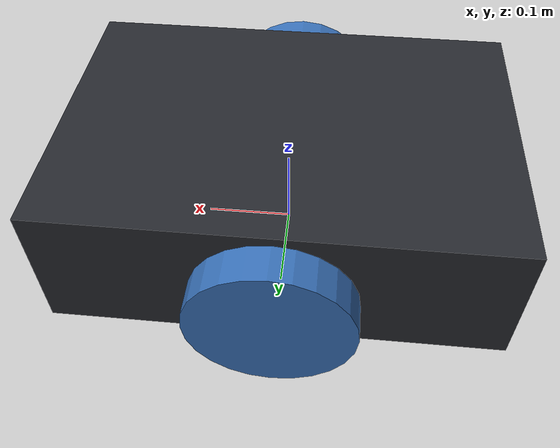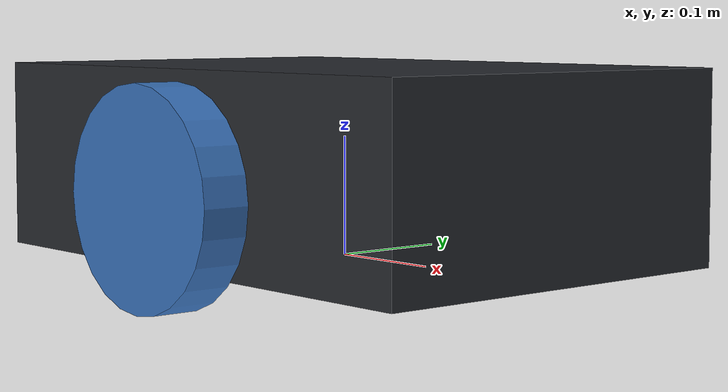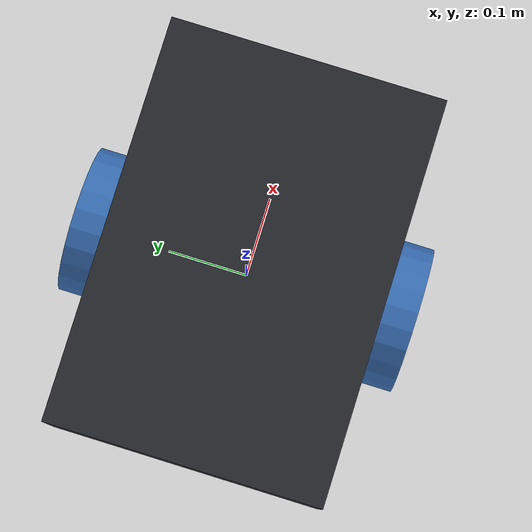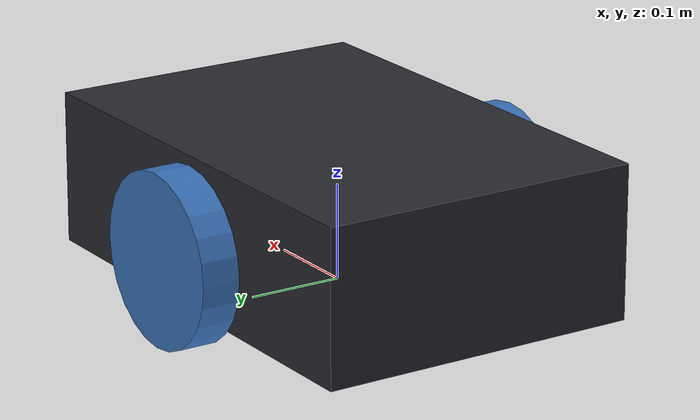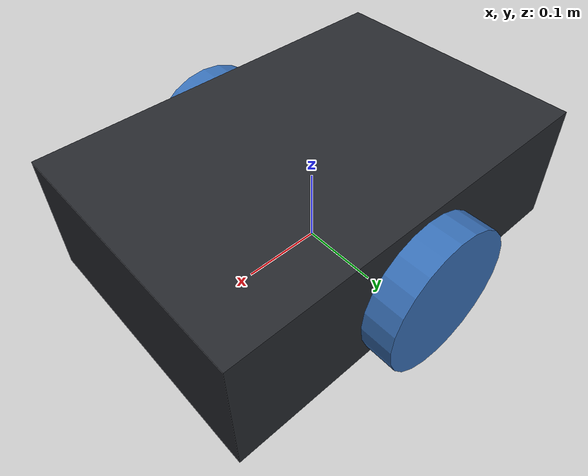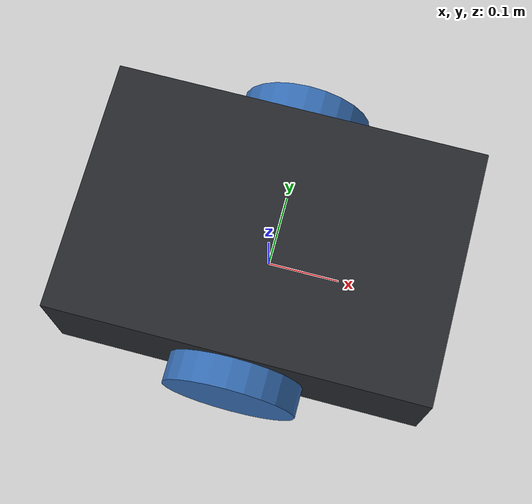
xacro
<?xml version="1.0"?>
<robot name="neurobot" xmlns:xacro="http://www.ros.org/wiki/xacro">
  <xacro:property name="wheel_radius" value="0.09"/>
  <xacro:property name="wheel_length" value="0.04"/>
  <xacro:property name="wheel_separation" value="0.38"/>

  <material name="graphite"><color rgba="0.15 0.16 0.18 1.0"/></material>
  <material name="accent"><color rgba="0.22 0.44 0.72 1.0"/></material>

  <link name="base_link">
    <visual><origin xyz="0 0 0"/><geometry><box size="0.50 0.34 0.16"/></geometry><material name="graphite"/></visual>
    <collision><origin xyz="0 0 0"/><geometry><box size="0.50 0.34 0.16"/></geometry></collision>
    <inertial><origin xyz="0 0 0"/><mass value="6.0"/><inertia ixx="0.10" ixy="0" ixz="0" iyy="0.12" iyz="0" izz="0.14"/></inertial>
  </link>

  <link name="base_footprint"/>
  <joint name="base_footprint_joint" type="fixed">
    <parent link="base_footprint"/>
    <child link="base_link"/>
    <origin xyz="0 0 0.08" rpy="0 0 0"/>
  </joint>

  <link name="left_wheel_link">
    <visual><origin rpy="1.57079632679 0 0"/><geometry><cylinder radius="${wheel_radius}" length="${wheel_length}"/></geometry><material name="accent"/></visual>
    <collision><origin rpy="1.57079632679 0 0"/><geometry><cylinder radius="${wheel_radius}" length="${wheel_length}"/></geometry></collision>
    <inertial><mass value="0.4"/><origin xyz="0 0 0"/><inertia ixx="0.001" ixy="0" ixz="0" iyy="0.001" iyz="0" izz="0.001"/></inertial>
  </link>
  <joint name="left_wheel_joint" type="continuous">
    <parent link="base_link"/>
    <child link="left_wheel_link"/>
    <origin xyz="0 ${wheel_separation/2} -0.02" rpy="0 0 0"/>
    <axis xyz="0 1 0"/>
  </joint>

  <link name="right_wheel_link">
    <visual><origin rpy="1.57079632679 0 0"/><geometry><cylinder radius="${wheel_radius}" length="${wheel_length}"/></geometry><material name="accent"/></visual>
    <collision><origin rpy="1.57079632679 0 0"/><geometry><cylinder radius="${wheel_radius}" length="${wheel_length}"/></geometry></collision>
    <inertial><mass value="0.4"/><origin xyz="0 0 0"/><inertia ixx="0.001" ixy="0" ixz="0" iyy="0.001" iyz="0" izz="0.001"/></inertial>
  </link>
  <joint name="right_wheel_joint" type="continuous">
    <parent link="base_link"/>
    <child link="right_wheel_link"/>
    <origin xyz="0 -${wheel_separation/2} -0.02" rpy="0 0 0"/>
    <axis xyz="0 1 0"/>
  </joint>

  <link name="lidar_link"/>
  <joint name="lidar_joint" type="fixed">
    <parent link="base_link"/>
    <child link="lidar_link"/>
    <origin xyz="0.18 0 0.10" rpy="0 0 0"/>
  </joint>

  <link name="imu_link"/>
  <joint name="imu_joint" type="fixed">
    <parent link="base_link"/>
    <child link="imu_link"/>
    <origin xyz="0 0 0.05" rpy="0 0 0"/>
  </joint>

  <link name="camera_link"/>
  <joint name="camera_joint" type="fixed">
    <parent link="base_link"/>
    <child link="camera_link"/>
    <origin xyz="0.20 0 0.12" rpy="0 0 0"/>
  </joint>

  <link name="depth_camera_link"/>
  <joint name="depth_camera_joint" type="fixed">
    <parent link="base_link"/>
    <child link="depth_camera_link"/>
    <origin xyz="0.18 0 0.13" rpy="0 0 0"/>
  </joint>

  <link name="contact_front_link"/>
  <joint name="contact_front_joint" type="fixed">
    <parent link="base_link"/>
    <child link="contact_front_link"/>
    <origin xyz="0.26 0 0.01" rpy="0 0 0"/>
  </joint>

  <ros2_control name="neurobot_system" type="system">
    <hardware>
      <plugin>gz_ros2_control/GazeboSimSystem</plugin>
    </hardware>
    <joint name="left_wheel_joint">
      <command_interface name="velocity"/>
      <state_interface name="position"/>
      <state_interface name="velocity"/>
    </joint>
    <joint name="right_wheel_joint">
      <command_interface name="velocity"/>
      <state_interface name="position"/>
      <state_interface name="velocity"/>
    </joint>
  </ros2_control>

  <gazebo>
    <plugin filename="libgz_ros2_control-system.so" name="gz_ros2_control::GazeboSimROS2ControlPlugin">
      <parameters>$(find neuro_nav_bringup)/config/ros2_controllers.yaml</parameters>
    </plugin>
  </gazebo>

  <gazebo reference="lidar_link">
    <sensor name="front_lidar" type="gpu_lidar">
      <always_on>true</always_on>
      <update_rate>20</update_rate>
      <topic>/scan</topic>
      <gz_frame_id>lidar_link</gz_frame_id>
      <lidar>
        <scan><horizontal><samples>720</samples><resolution>1</resolution><min_angle>-3.14159</min_angle><max_angle>3.14159</max_angle></horizontal></scan>
        <range><min>0.08</min><max>12.0</max><resolution>0.01</resolution></range>
      </lidar>
    </sensor>
  </gazebo>

  <gazebo reference="imu_link">
    <sensor name="imu_sensor" type="imu">
      <always_on>true</always_on>
      <update_rate>100</update_rate>
      <topic>/imu/data</topic>
      <gz_frame_id>imu_link</gz_frame_id>
    </sensor>
  </gazebo>

  <gazebo reference="camera_link">
    <sensor name="rgb_camera" type="camera">
      <always_on>true</always_on>
      <update_rate>15</update_rate>
      <topic>/camera/image_raw</topic>
      <gz_frame_id>camera_link</gz_frame_id>
      <camera>
        <horizontal_fov>1.396</horizontal_fov>
        <image><width>640</width><height>480</height><format>R8G8B8</format></image>
        <clip><near>0.05</near><far>25.0</far></clip>
      </camera>
    </sensor>
  </gazebo>

  <gazebo reference="depth_camera_link">
    <sensor name="depth_camera" type="depth_camera">
      <always_on>true</always_on>
      <update_rate>10</update_rate>
      <topic>/camera/depth/image_raw</topic>
      <gz_frame_id>depth_camera_link</gz_frame_id>
      <camera>
        <horizontal_fov>1.2217</horizontal_fov>
        <image><width>424</width><height>240</height><format>R_FLOAT32</format></image>
        <clip><near>0.1</near><far>15.0</far></clip>
      </camera>
    </sensor>
  </gazebo>

  <gazebo reference="contact_front_link">
    <sensor name="front_contact" type="contact">
      <always_on>true</always_on>
      <update_rate>50</update_rate>
      <topic>/bumper/contact</topic>
    </sensor>
  </gazebo>
</robot>
